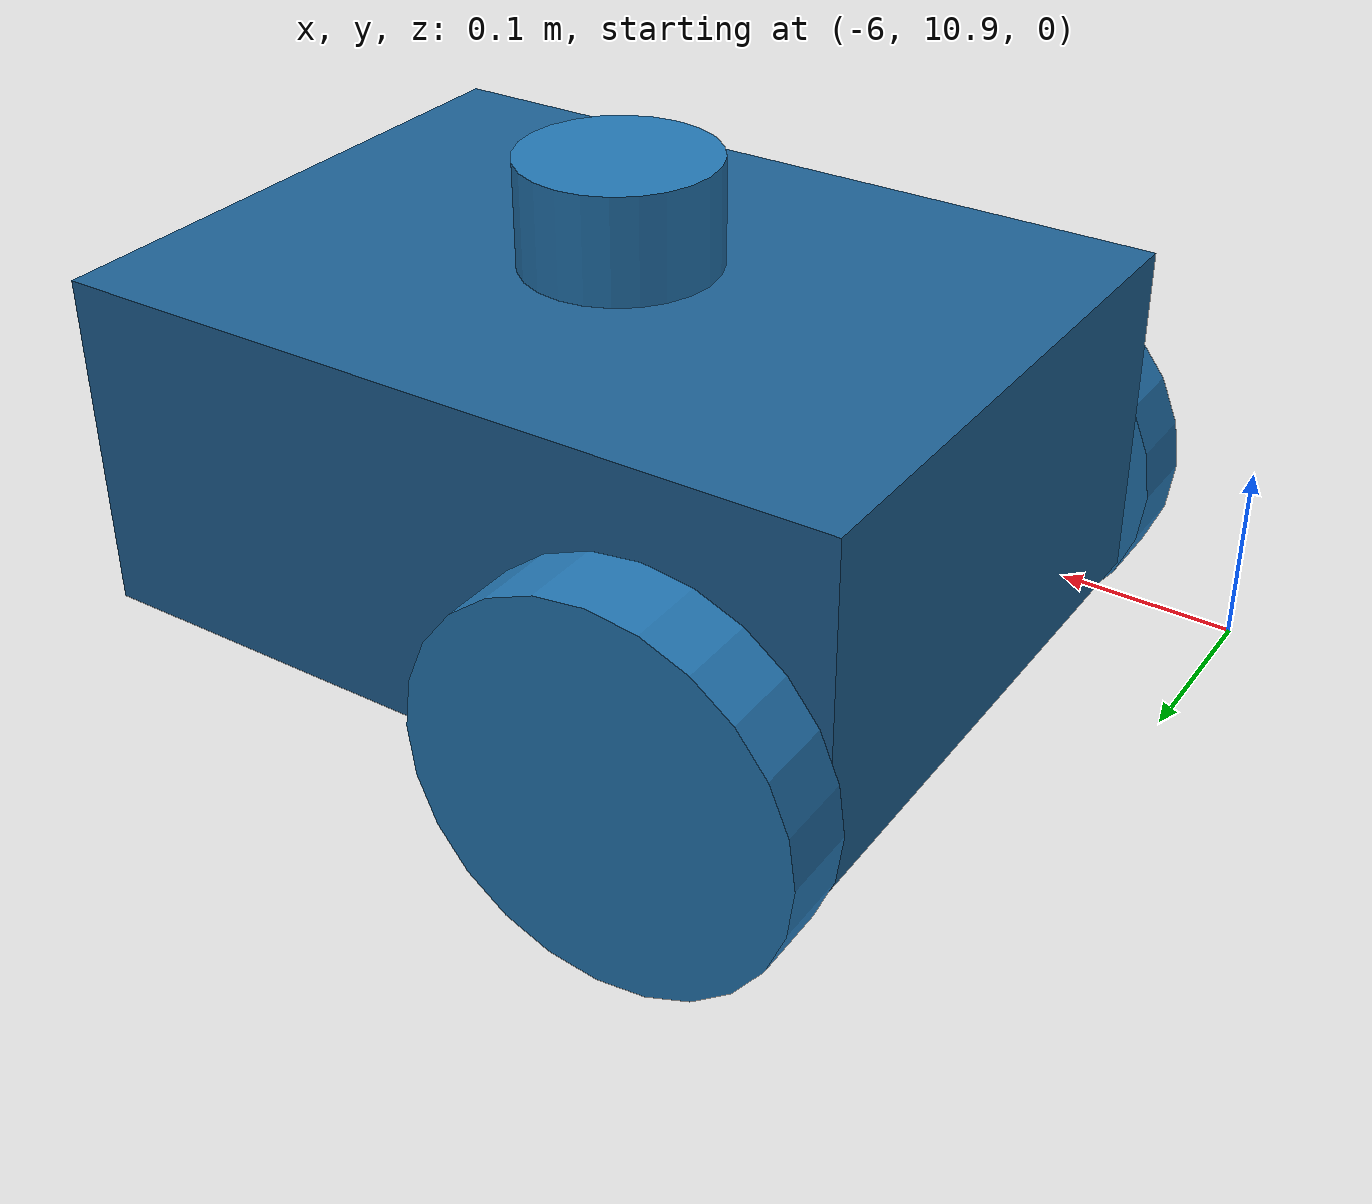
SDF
<?xml version="1.0" ?>

<sdf version="1.5">
    <model name='sam_bot'>
    <link name='base_link'>
        <inertial>
        <pose>0.007054 0 0.013988 1.5708 -0 1.5708</pose>
        <mass>1.1659999999999999</mass>
        <inertia>
            <ixx>0.022766700000000001</ixx>
            <ixy>-5.61451e-20</ixy>
            <ixz>-4.6963199999999997e-19</ixz>
            <iyy>0.026375099999999999</iyy>
            <iyz>-0.000198199</iyz>
            <izz>0.0144172</izz>
        </inertia>
        </inertial>
        <collision name='base_link_collision'>
        <pose>0 0 0 0 0 0</pose>
        <geometry>
            <box>
            <size>0.42 0.31 0.18</size>
            </box>
        </geometry>
        <surface>
            <friction>
            <ode/>
            </friction>
            <bounce/>
            <contact/>
        </surface>
        </collision>
        <collision name='base_link_fixed_joint_lump__camera_link_collision_1'>
        <pose>0.215 0 0.05 0 0 0</pose>
        <geometry>
            <box>
            <size>0.015 0.13 0.022</size>
            </box>
        </geometry>
        <surface>
            <contact>
            <ode/>
            </contact>
            <friction>
            <ode/>
            </friction>
            <bounce/>
        </surface>
        </collision>
        <collision name='base_link_fixed_joint_lump__front_caster_collision_2'>
        <pose>0.14 0 -0.09 0 0 0</pose>
        <geometry>
            <sphere>
            <radius>0.060000000000000032</radius>
            </sphere>
        </geometry>
        <surface>
            <friction>
            <ode/>
            </friction>
            <bounce/>
            <contact/>
        </surface>
        </collision>
        <collision name='base_link_fixed_joint_lump__imu_link_collision_3'>
        <pose>0 0 0.01 0 0 0</pose>
        <geometry>
            <box>
            <size>0.1 0.1 0.1</size>
            </box>
        </geometry>
        <surface>
            <contact>
            <ode/>
            </contact>
            <friction>
            <ode/>
            </friction>
            <bounce/>
        </surface>
        </collision>
        <collision name='base_link_fixed_joint_lump__lidar_link_collision_4'>
        <pose>0 0 0.12 0 0 0</pose>
        <geometry>
            <cylinder>
            <length>0.055</length>
            <radius>0.050799999999999998</radius>
            </cylinder>
        </geometry>
        <surface>
            <contact>
            <ode/>
            </contact>
            <friction>
            <ode/>
            </friction>
            <bounce/>
        </surface>
        </collision>
        <visual name='base_link_visual'>
        <pose>0 0 0 0 0 0</pose>
        <geometry>
            <box>
            <size>0.42 0.31 0.18</size>
            </box>
        </geometry>
        <material>
            <diffuse>0.1125 0.375 0.575 1</diffuse>
            <ambient>0.1125 0.375 0.575 1</ambient>
        </material>
        </visual>
        <visual name='base_link_fixed_joint_lump__camera_link_visual_1'>
        <pose>0.215 0 0.05 0 0 0</pose>
        <geometry>
            <box>
            <size>0.015 0.13 0.022</size>
            </box>
        </geometry>
        <material>
            <diffuse>0.1375 0.4625 0.7 1</diffuse>
            <ambient>0.1375 0.4625 0.7 1</ambient>
        </material>
        </visual>
        <visual name='base_link_fixed_joint_lump__front_caster_visual_2'>
        <pose>0.14 0 -0.09 0 0 0</pose>
        <geometry>
            <sphere>
            <radius>0.060000000000000032</radius>
            </sphere>
        </geometry>
        <material>
            <diffuse>0.1125 0.375 0.575 1</diffuse>
            <ambient>0.1125 0.375 0.575 1</ambient>
        </material>
        </visual>
        <visual name='base_link_fixed_joint_lump__imu_link_visual_3'>
        <pose>0 0 0.01 0 0 0</pose>
        <geometry>
            <box>
            <size>0.1 0.1 0.1</size>
            </box>
        </geometry>
        </visual>
        <visual name='base_link_fixed_joint_lump__lidar_link_visual_4'>
        <pose>0 0 0.12 0 0 0</pose>
        <geometry>
            <cylinder>
            <length>0.055</length>
            <radius>0.050799999999999998</radius>
            </cylinder>
        </geometry>
        <material>
            <diffuse>0.1375 0.4625 0.7 1</diffuse>
            <ambient>0.1375 0.4625 0.7 1</ambient>
        </material>
        </visual>
        <sensor name='robot_cam' type='camera'>
        <pose>0.215 0 0.05 0 -0 0</pose>
        <topic>robot_cam</topic>
        <update_rate>30</update_rate>
        <enable_metrics>true</enable_metrics>
        <camera name='__default__'>
            <pose>0 0 0 0 -0 0</pose>
            <horizontal_fov>1.0469999999999999</horizontal_fov>
            <image>
            <width>320</width>
            <height>240</height>
            <format>RGB_INT8</format>
            <anti_aliasing>4</anti_aliasing>
            </image>
            <camera_info_topic>__default__</camera_info_topic>
            <trigger_topic></trigger_topic>
            <triggered>false</triggered>
            <clip>
            <near>0.10000000000000001</near>
            <far>100</far>
            </clip>
            <save enabled='false'>
            <path>__default__</path>
            </save>
            <visibility_mask>4294967295</visibility_mask>
            <noise>
            <type>none</type>
            <mean>0</mean>
            <stddev>0</stddev>
            </noise>
            <distortion>
            <k1>0</k1>
            <k2>0</k2>
            <k3>0</k3>
            <p1>0</p1>
            <p2>0</p2>
            <center>0.5 0.5</center>
            </distortion>
            <lens>
            <type>stereographic</type>
            <scale_to_hfov>true</scale_to_hfov>
            <cutoff_angle>1.5708</cutoff_angle>
            <env_texture_size>256</env_texture_size>
            </lens>
            <optical_frame_id></optical_frame_id>
        </camera>
        </sensor>
        <sensor name='imu_sensor' type='imu'>
        <pose>0 0 0.01 0 -0 0</pose>
        <topic>imu</topic>
        <update_rate>100</update_rate>
        <enable_metrics>false</enable_metrics>
        <imu>
            <orientation_reference_frame>
            <localization>CUSTOM</localization>
            <custom_rpy>0 0 0</custom_rpy>
            <grav_dir_x>1 0 0</grav_dir_x>
            </orientation_reference_frame>
            <angular_velocity>
            <x>
                <noise type='gaussian'>
                <mean>0</mean>
                <stddev>0.00020000000000000001</stddev>
                <bias_mean>7.5000000000000002e-06</bias_mean>
                <bias_stddev>7.9999999999999996e-07</bias_stddev>
                <dynamic_bias_stddev>0</dynamic_bias_stddev>
                <dynamic_bias_correlation_time>0</dynamic_bias_correlation_time>
                <precision>0</precision>
                </noise>
            </x>
            <y>
                <noise type='gaussian'>
                <mean>0</mean>
                <stddev>0.00020000000000000001</stddev>
                <bias_mean>7.5000000000000002e-06</bias_mean>
                <bias_stddev>7.9999999999999996e-07</bias_stddev>
                <dynamic_bias_stddev>0</dynamic_bias_stddev>
                <dynamic_bias_correlation_time>0</dynamic_bias_correlation_time>
                <precision>0</precision>
                </noise>
            </y>
            <z>
                <noise type='gaussian'>
                <mean>0</mean>
                <stddev>0.00020000000000000001</stddev>
                <bias_mean>7.5000000000000002e-06</bias_mean>
                <bias_stddev>7.9999999999999996e-07</bias_stddev>
                <dynamic_bias_stddev>0</dynamic_bias_stddev>
                <dynamic_bias_correlation_time>0</dynamic_bias_correlation_time>
                <precision>0</precision>
                </noise>
            </z>
            </angular_velocity>
            <linear_acceleration>
            <x>
                <noise type='gaussian'>
                <mean>0</mean>
                <stddev>0.017000000000000001</stddev>
                <bias_mean>0.10000000000000001</bias_mean>
                <bias_stddev>0.001</bias_stddev>
                <dynamic_bias_stddev>0</dynamic_bias_stddev>
                <dynamic_bias_correlation_time>0</dynamic_bias_correlation_time>
                <precision>0</precision>
                </noise>
            </x>
            <y>
                <noise type='gaussian'>
                <mean>0</mean>
                <stddev>0.017000000000000001</stddev>
                <bias_mean>0.10000000000000001</bias_mean>
                <bias_stddev>0.001</bias_stddev>
                <dynamic_bias_stddev>0</dynamic_bias_stddev>
                <dynamic_bias_correlation_time>0</dynamic_bias_correlation_time>
                <precision>0</precision>
                </noise>
            </y>
            <z>
                <noise type='gaussian'>
                <mean>0</mean>
                <stddev>0.017000000000000001</stddev>
                <bias_mean>0.10000000000000001</bias_mean>
                <bias_stddev>0.001</bias_stddev>
                <dynamic_bias_stddev>0</dynamic_bias_stddev>
                <dynamic_bias_correlation_time>0</dynamic_bias_correlation_time>
                <precision>0</precision>
                </noise>
            </z>
            </linear_acceleration>
            <enable_orientation>true</enable_orientation>
        </imu>
        <plugin name='ignition::gazebo::systems::Imu' filename='ignition-gazebo-imu-system'/>
        </sensor>
        <sensor name='lidar' type='gpu_lidar'>
        <pose>0 0 0.12 0 -0 0</pose>
        <topic>scan</topic>
        <update_rate>5</update_rate>
        <enable_metrics>false</enable_metrics>
        <lidar>
            <scan>
            <horizontal>
                <samples>360</samples>
                <resolution>1</resolution>
                <min_angle>0</min_angle>
                <max_angle>6.2800000000000002</max_angle>
            </horizontal>
            <vertical>
                <samples>1</samples>
                <min_angle>-0.261799</min_angle>
                <max_angle>0.261799</max_angle>
                <resolution>1</resolution>
            </vertical>
            </scan>
            <range>
            <min>0.12</min>
            <max>100</max>
            <resolution>0.014999999999999999</resolution>
            </range>
            <noise>
            <type>gaussian</type>
            <mean>0</mean>
            <stddev>0.01</stddev>
            </noise>
            <visibility_mask>4294967295</visibility_mask>
        </lidar>
        </sensor>
        <pose>0 0 0 0 -0 0</pose>
        <enable_wind>false</enable_wind>
    </link>
    <joint name='drivewhl_l_joint' type='revolute'>
        <pose>0 0 0 0 -0 0</pose>
        <parent>base_link</parent>
        <child>drivewhl_l_link</child>
        <axis>
        <xyz>0 1 0</xyz>
        <limit>
            <lower>-10000000000000000</lower>
            <upper>10000000000000000</upper>
            <effort>inf</effort>
            <velocity>inf</velocity>
            <stiffness>100000000</stiffness>
            <dissipation>1</dissipation>
        </limit>
        <dynamics>
            <spring_reference>0</spring_reference>
            <spring_stiffness>0</spring_stiffness>
            <damping>0.20000000000000001</damping>
            <friction>0</friction>
        </dynamics>
        </axis>
    </joint>
    <link name='drivewhl_l_link'>
        <pose>-0.12 0.18 -0.05 0 -1e-05 0</pose>
        <inertial>
        <pose>0 0 0 1.5708 -0 0</pose>
        <mass>2.5</mass>
        <inertia>
            <ixx>0.0065833300000000001</ixx>
            <ixy>0</ixy>
            <ixz>0</ixz>
            <iyy>0.0065833300000000001</iyy>
            <iyz>0</iyz>
            <izz>0.012500000000000001</izz>
        </inertia>
        </inertial>
        <collision name='drivewhl_l_link_collision'>
        <pose>0 0 0 1.570796326794896 0 0</pose>
        <geometry>
            <cylinder>
            <length>0.040000000000000001</length>
            <radius>0.10000000000000001</radius>
            </cylinder>
        </geometry>
        <surface>
            <friction>
            <ode/>
            </friction>
            <bounce/>
            <contact/>
        </surface>
        </collision>
        <visual name='drivewhl_l_link_visual'>
        <pose>0 0 0 1.570796326794896 0 0</pose>
        <geometry>
            <cylinder>
            <length>0.040000000000000001</length>
            <radius>0.10000000000000001</radius>
            </cylinder>
        </geometry>
        <material>
            <diffuse>0.1375 0.4625 0.7 1</diffuse>
            <ambient>0.1375 0.4625 0.7 1</ambient>
        </material>
        </visual>
        <enable_wind>false</enable_wind>
    </link>
    <joint name='drivewhl_r_joint' type='revolute'>
        <pose>0 0 0 0 -0 0</pose>
        <parent>base_link</parent>
        <child>drivewhl_r_link</child>
        <axis>
        <xyz>0 1 0</xyz>
        <limit>
            <lower>-10000000000000000</lower>
            <upper>10000000000000000</upper>
            <effort>inf</effort>
            <velocity>inf</velocity>
            <stiffness>100000000</stiffness>
            <dissipation>1</dissipation>
        </limit>
        <dynamics>
            <spring_reference>0</spring_reference>
            <spring_stiffness>0</spring_stiffness>
            <damping>0.20000000000000001</damping>
            <friction>0</friction>
        </dynamics>
        </axis>
    </joint>
    <link name='drivewhl_r_link'>
        <pose>-0.12 -0.18 -0.05 0 -1e-05 0</pose>
        <inertial>
        <pose>0 0 0 1.5708 -0 0</pose>
        <mass>2.5</mass>
        <inertia>
            <ixx>0.0065833300000000001</ixx>
            <ixy>0</ixy>
            <ixz>0</ixz>
            <iyy>0.0065833300000000001</iyy>
            <iyz>0</iyz>
            <izz>0.012500000000000001</izz>
        </inertia>
        </inertial>
        <collision name='drivewhl_r_link_collision'>
        <pose>0 0 0 1.570796326794896 0 0</pose>
        <geometry>
            <cylinder>
            <length>0.040000000000000001</length>
            <radius>0.10000000000000001</radius>
            </cylinder>
        </geometry>
        <surface>
            <friction>
            <ode/>
            </friction>
            <bounce/>
            <contact/>
        </surface>
        </collision>
        <visual name='drivewhl_r_link_visual'>
        <pose>0 0 0 1.570796326794896 0 0</pose>
        <geometry>
            <cylinder>
            <length>0.040000000000000001</length>
            <radius>0.10000000000000001</radius>
            </cylinder>
        </geometry>
        <material>
            <diffuse>0.1375 0.4625 0.7 1</diffuse>
            <ambient>0.1375 0.4625 0.7 1</ambient>
        </material>
        </visual>
        <enable_wind>false</enable_wind>
    </link>
    <plugin name='ign_ros2_control::IgnitionROS2ControlPlugin' filename='ign_ros2_control-system'>
        <parameters>/home/ibrahim/code/ign_sim_ws/install/sam_bot_nav2_gz/share/sam_bot_nav2_gz/config/diff_drive_controller_velocity.yaml</parameters>
    </plugin>
    <frame name='base_joint' attached_to='base_link'>
        <pose>0 0 -0.15 0 -0 0</pose>
    </frame>
    <frame name='base_footprint' attached_to='base_joint'/>
    <frame name='camera_frame_joint' attached_to='camera_link'>
        <pose>0 0 0 -1.5708 -0 -1.5708</pose>
    </frame>
    <frame name='camera_frame' attached_to='camera_frame_joint'/>
    <frame name='camera_joint' attached_to='base_link'>
        <pose>0.215 0 0.05 0 -0 0</pose>
    </frame>
    <frame name='camera_link' attached_to='camera_joint'/>
    <frame name='caster_joint' attached_to='base_link'>
        <pose>0.14 0 -0.09 0 -0 0</pose>
    </frame>
    <frame name='front_caster' attached_to='caster_joint'/>
    <frame name='imu_joint' attached_to='base_link'>
        <pose>0 0 0.01 0 -0 0</pose>
    </frame>
    <frame name='imu_link' attached_to='imu_joint'/>
    <frame name='lidar_joint' attached_to='base_link'>
        <pose>0 0 0.12 0 -0 0</pose>
    </frame>
    <frame name='lidar_link' attached_to='lidar_joint'/>
    <pose>-5.74164 11.1138 0.15 -0 0 -0</pose>
    <static>false</static>
    <self_collide>false</self_collide>
    </model>

</sdf>
